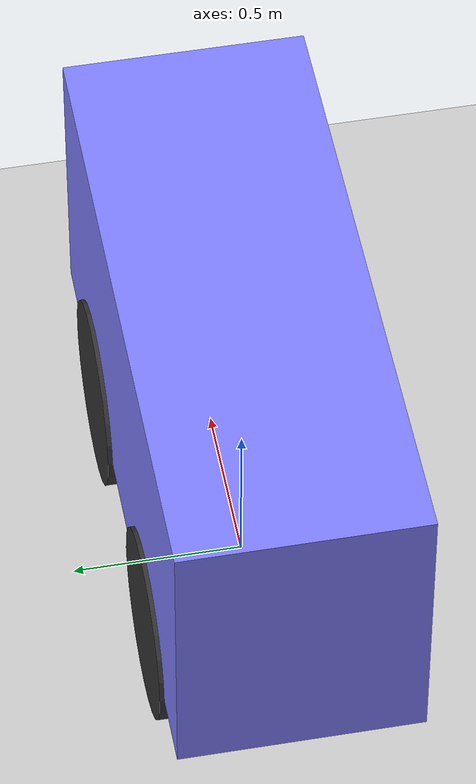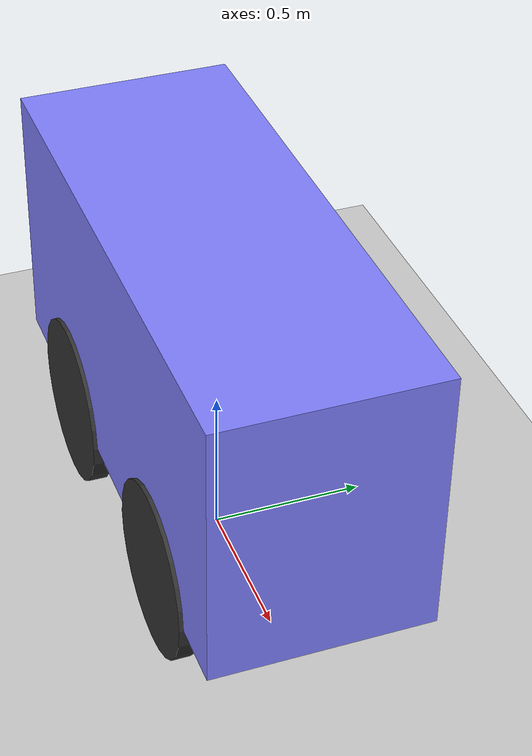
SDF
<?xml version="1.0" ?>
<sdf version="1.6">
  <world name="lucy_world">

    <physics name="1ms" type="ignored">
      <max_step_size>0.001</max_step_size>
      <real_time_factor>1.0</real_time_factor>
    </physics>
    <plugin
      filename="gz-sim-physics-system"
      name="gz::sim::systems::Physics">
    </plugin>
    <plugin
      filename="gz-sim-user-commands-system"
      name="gz::sim::systems::UserCommands">
    </plugin>
    <plugin
      filename="gz-sim-scene-broadcaster-system"
      name="gz::sim::systems::SceneBroadcaster">
    </plugin>

    <lighting>
      <shadow_mode> none </shadow_mode>
    </lighting>

    <model name="ground_plane">
      <static>true</static>
      <link name="link">
        <collision name="collision">
          <geometry>
            <plane>
              <normal>0 0 1</normal>
              <size>100 100</size>
            </plane>
          </geometry>
          <surface>
            <friction>
              <ode>
                <mu>50</mu>
              </ode>
              <bullet>
                <friction>1</friction>
                <rolling_friction>0.1</rolling_friction>
              </bullet>
            </friction>
          </surface>
        </collision>
        <visual name="visual">
          <geometry>
            <plane>
              <normal>0 0 1</normal>
              <size>100 100</size>
            </plane>
          </geometry>
          <material>
            <ambient>0.8 0.8 0.8 1</ambient>
            <diffuse>0.8 0.8 0.8 1</diffuse>
            <specular>0.8 0.8 0.8 1</specular>
          </material>
        </visual>
      </link>
    </model>
    <model name='lucy_robot'>
      <link name='chassis'>
        <pose>0 0 0 0 0 0</pose>
        <inertial>
          <mass>1.14395</mass>
          <inertia>
            <ixx>0.126164</ixx>
            <ixy>0</ixy>
            <ixz>0</ixz>
            <iyy>0.416519</iyy>
            <iyz>0</iyz>
            <izz>0.481014</izz>
          </inertia>
        </inertial>
        <visual name='visual'>
          <geometry>
            <box>
              <size>1.831 0.705 0.885</size>
            </box>
          </geometry>
          <material>
            <ambient>0.5 0.5 1.0 1</ambient>
            <diffuse>0.5 0.5 1.0 1</diffuse>
            <specular>0.0 0.0 1.0 1</specular>
          </material>
        </visual>
        <collision name='collision'>
          <geometry>
            <box>
              <size>1.831 0.705 0.885</size>
            </box>
          </geometry>
        </collision>
      </link>

      <link name='front_left_wheel'>
        <pose>0.4335 0.335 -0.4425 -1.5707 0 0</pose>
        <inertial>
          <mass>2</mass>
          <inertia>
            <ixx>0.145833</ixx>
            <ixy>0</ixy>
            <ixz>0</ixz>
            <iyy>0.145833</iyy>
            <iyz>0</iyz>
            <izz>0.125</izz>
          </inertia>
        </inertial>
        <visual name='visual'>
          <geometry>
            <cylinder>
              <length>0.062</length>
              <radius>0.278</radius>
            </cylinder>
          </geometry>
          <material>
            <ambient>0.2 0.2 0.2 1</ambient>
            <diffuse>0.2 0.2 0.2 1</diffuse>
            <specular>0.2 0.2 0.2 1</specular>
          </material>
        </visual>
        <collision name='collision'>
          <geometry>
            <cylinder>
              <length>0.062</length>
              <radius>0.278</radius>
            </cylinder>
          </geometry>
          <surface>
            <friction>
              <ode>
                <mu>0.5</mu>
                <mu2>1.0</mu2>
                <fdir1>0 0 1</fdir1>
              </ode>
              <bullet>
                <friction>0.5</friction>
                <friction2>1</friction2>
                <rolling_friction>0.1</rolling_friction>
              </bullet>
            </friction>
          </surface>
        </collision>
      </link>

      <link name='rear_left_wheel'>
        <pose>-0.4335 0.335 -0.4425 -1.5707 0 0</pose>
        <inertial>
          <mass>2</mass>
          <inertia>
            <ixx>0.145833</ixx>
            <ixy>0</ixy>
            <ixz>0</ixz>
            <iyy>0.145833</iyy>
            <iyz>0</iyz>
            <izz>0.125</izz>
          </inertia>
        </inertial>
        <visual name='visual'>
          <geometry>
            <cylinder>
              <length>0.062</length>
              <radius>0.278</radius>
            </cylinder>
          </geometry>
          <material>
            <ambient>0.2 0.2 0.2 1</ambient>
            <diffuse>0.2 0.2 0.2 1</diffuse>
            <specular>0.2 0.2 0.2 1</specular>
          </material>
        </visual>
        <collision name='collision'>
          <geometry>
            <cylinder>
              <length>0.062</length>
              <radius>0.278</radius>
            </cylinder>
          </geometry>
          <surface>
            <friction>
              <ode>
                <mu>0.5</mu>
                <mu2>1.0</mu2>
                <fdir1>0 0 1</fdir1>
              </ode>
              <bullet>
                <friction>0.5</friction>
                <friction2>1</friction2>
                <rolling_friction>0.5</rolling_friction>
              </bullet>
            </friction>
          </surface>
        </collision>
      </link>

      <link name='front_right_wheel'>
        <pose>.4335 -0.335 -0.4425 -1.5707 0 0</pose>
        <inertial>
          <mass>2</mass>
          <inertia>
            <ixx>0.145833</ixx>
            <ixy>0</ixy>
            <ixz>0</ixz>
            <iyy>0.145833</iyy>
            <iyz>0</iyz>
            <izz>0.125</izz>
          </inertia>
        </inertial>
        <visual name='visual'>
          <geometry>
            <cylinder>
              <length>0.062</length>
              <radius>0.278</radius>
            </cylinder>
          </geometry>
          <material>
            <ambient>0.2 0.2 0.2 1</ambient>
            <diffuse>0.2 0.2 0.2 1</diffuse>
            <specular>0.2 0.2 0.2 1</specular>
          </material>
        </visual>
        <collision name='collision'>
          <geometry>
            <cylinder>
              <length>0.062</length>
              <radius>0.278</radius>
            </cylinder>
          </geometry>
          <surface>
            <friction>
              <ode>
                <mu>0.5</mu>
                <mu2>1.0</mu2>
                <fdir1>0 0 1</fdir1>
              </ode>
              <bullet>
                <friction>0.5</friction>
                <friction2>1</friction2>
                <rolling_friction>0.1</rolling_friction>
              </bullet>
            </friction>
          </surface>
        </collision>
      </link>

      <link name='rear_right_wheel'>
        <pose>-.4335 -0.335 -0.4425 -1.5707 0 0</pose>
        <inertial>
          <mass>2</mass>
          <inertia>
            <ixx>0.145833</ixx>
            <ixy>0</ixy>
            <ixz>0</ixz>
            <iyy>0.145833</iyy>
            <iyz>0</iyz>
            <izz>0.125</izz>
          </inertia>
        </inertial>
        <visual name='visual'>
          <geometry>
            <cylinder>
              <length>0.062</length>
              <radius>0.278</radius>
            </cylinder>
          </geometry>
          <material>
            <ambient>0.2 0.2 0.2 1</ambient>
            <diffuse>0.2 0.2 0.2 1</diffuse>
            <specular>0.2 0.2 0.2 1</specular>
          </material>
        </visual>
        <collision name='collision'>
          <geometry>
            <cylinder>
              <length>0.062</length>
              <radius>0.278</radius>
            </cylinder>
          </geometry>
          <surface>
            <friction>
              <ode>
                <mu>0.5</mu>
                <mu2>1.0</mu2>
                <fdir1>0 0 1</fdir1>
              </ode>
              <bullet>
                <friction>0.5</friction>
                <friction2>1</friction2>
                <rolling_friction>0.5</rolling_friction>
              </bullet>
            </friction>
          </surface>
        </collision>
      </link>

      <link name="front_left_wheel_steering_link">
        <pose>0.4335 0.209971 -0.3975 0 0 0</pose>
        <inertial>
          <mass>0.5</mass>
          <inertia>
            <ixx>0.0153</ixx>
            <iyy>0.025</iyy>
            <izz>0.0153</izz>
          </inertia>
        </inertial>
        <visual name="steering_link_visual">
          <pose>0 0 0 0 0 0</pose>
          <geometry>
            <cylinder>
              <length>0.1</length>
              <radius>0.03</radius>
            </cylinder>
          </geometry>
          <material>
            <ambient>1 1 1</ambient>
            <diffuse>1 1 1</diffuse>
          </material>
        </visual>
      </link>

      <link name="front_right_wheel_steering_link">
        <pose>0.4335 -0.209971 -0.3975 0 0 0</pose>
        <inertial>
          <mass>0.5</mass>
          <inertia>
            <ixx>0.0153</ixx>
            <iyy>0.025</iyy>
            <izz>0.0153</izz>
          </inertia>
        </inertial>
        <visual name="steering_link_visual">
          <pose>0 0 0 0 0 0</pose>
          <geometry>
            <cylinder>
              <length>0.1</length>
              <radius>0.03</radius>
            </cylinder>
          </geometry>
          <material>
            <ambient>1 1 1</ambient>
            <diffuse>1 1 1</diffuse>
          </material>
        </visual>
      </link>

      <joint name="front_left_wheel_steering_joint" type="revolute">
        <child>front_left_wheel_steering_link</child>
        <parent>chassis</parent>
        <axis>
          <xyz>0 0 1</xyz>
          <limit>
            <lower>-0.6</lower>
            <upper>+0.6</upper>
            <velocity>1.0</velocity>
            <effort>25</effort>
          </limit>
          <use_parent_model_frame>1</use_parent_model_frame>
        </axis>
      </joint>

      <joint name="front_right_wheel_steering_joint" type="revolute">
        <parent>chassis</parent>
        <child>front_right_wheel_steering_link</child>
        <axis>
          <xyz>0 0 1</xyz>
          <limit>
            <lower>-0.6</lower>
            <upper>+0.6</upper>
            <velocity>1.0</velocity>
            <effort>25</effort>
          </limit>
        </axis>
      </joint>

      <joint name='front_left_wheel_joint' type='revolute'>
        <parent>front_left_wheel_steering_link</parent>
        <child>front_left_wheel</child>
        <axis>
          <xyz>0 0 1</xyz>
          <limit>
            <lower>-1.79769e+308</lower>
            <upper>1.79769e+308</upper>
          </limit>
        </axis>
      </joint>

      <joint name='front_right_wheel_joint' type='revolute'>
        <parent>front_right_wheel_steering_link</parent>
        <child>front_right_wheel</child>
        <axis>
          <xyz>0 0 1</xyz>
          <limit>
            <lower>-1.79769e+308</lower>
            <upper>1.79769e+308</upper>
          </limit>
        </axis>
      </joint>

      <joint name='rear_left_wheel_joint' type='revolute'>
        <parent>chassis</parent>
        <child>rear_left_wheel</child>
        <axis>
          <xyz>0 0 1</xyz>
          <limit>
            <lower>-1.79769e+308</lower>
            <upper>1.79769e+308</upper>
          </limit>
        </axis>
      </joint>

      <joint name='rear_right_wheel_joint' type='revolute'>
        <parent>chassis</parent>
        <child>rear_right_wheel</child>
        <axis>
          <xyz>0 0 1</xyz>
          <limit>
            <lower>-1.79769e+308</lower>
            <upper>1.79769e+308</upper>
          </limit>
        </axis>
      </joint>

      <plugin
        filename="gz-sim-ackermann-steering-system"
        name="gz::sim::systems::AckermannSteering">
        <left_joint>front_left_wheel_joint</left_joint>
        <left_joint>rear_left_wheel_joint</left_joint>
        <right_joint>front_right_wheel_joint</right_joint>
        <right_joint>rear_right_wheel_joint</right_joint>
        <left_steering_joint>front_left_wheel_steering_joint</left_steering_joint>
        <right_steering_joint>front_right_wheel_steering_joint</right_steering_joint>
        <kingpin_width>0.419942</kingpin_width>
        <steering_limit>0.5</steering_limit>
        <wheel_base>0.867</wheel_base>
        <wheel_separation>0.67</wheel_separation>
        <wheel_radius>0.278</wheel_radius>
        <min_velocity>-1</min_velocity>
        <max_velocity>1</max_velocity>
        <min_acceleration>-3</min_acceleration>
        <max_acceleration>3</max_acceleration>
      </plugin>
      <pose>0 0 0.7205 0 0 0</pose>
      <name>lucy_robot</name>
    </model>

  </world>
</sdf>
